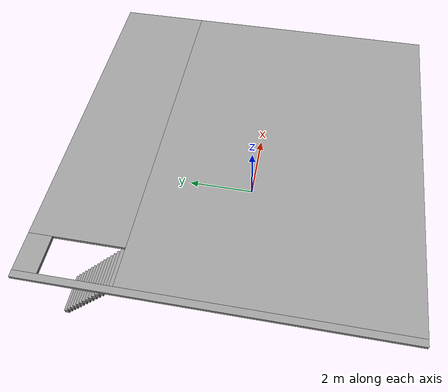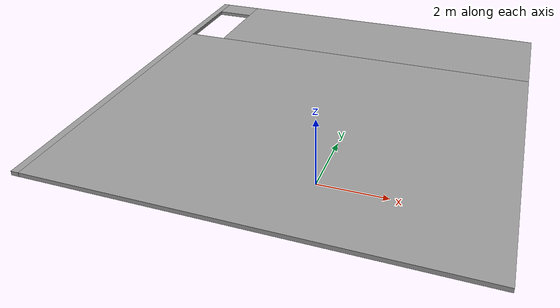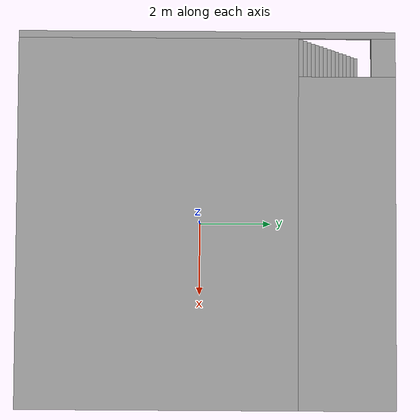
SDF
<sdf version="1.6">
 <model name="2storeyBuilding">
  <pose>-0.004073 0.180036 0 0 -0 0</pose>
  <link name="Floor_0">
   <pose>-0 -0 2.5 0 -0 0</pose>
   <visual name="Floor_0_Visual_0">
    <pose>-4.80983 0 0.05 0 -0 0</pose>
    <geometry><box><size>0.180349 9.8 0.1</size></box></geometry>
    <material>
     <script><uri>file://media/materials/scripts/gazebo.material</uri><name>Gazebo/Grey</name></script>
     <ambient>1 1 1 1</ambient>
    </material>
    <meta><layer>1</layer></meta>
   </visual>
   <collision name="Floor_0_Collision_0">
    <geometry><box><size>0.180349 9.8 0.1</size></box></geometry>
    <pose>-4.80983 0 0.05 0 -0 0</pose>
   </collision>
   <visual name="Floor_0_Visual_1">
    <pose>0.090174 -1.26072 0.05 0 -0 0</pose>
    <geometry><box><size>9.61965 7.27856 0.1</size></box></geometry>
    <material>
     <script><uri>file://media/materials/scripts/gazebo.material</uri><name>Gazebo/Grey</name></script>
     <ambient>1 1 1 1</ambient>
    </material>
    <meta><layer>1</layer></meta>
   </visual>
   <collision name="Floor_0_Collision_1">
    <geometry><box><size>9.61965 7.27856 0.1</size></box></geometry>
    <pose>0.090174 -1.26072 0.05 0 -0 0</pose>
   </collision>
   <visual name="Floor_0_Visual_2">
    <pose>0.590174 3.63928 0.05 0 -0 0</pose>
    <geometry><box><size>8.61965 2.52144 0.1</size></box></geometry>
    <material>
     <script><uri>file://media/materials/scripts/gazebo.material</uri><name>Gazebo/Grey</name></script>
     <ambient>1 1 1 1</ambient>
    </material>
    <meta><layer>1</layer></meta>
   </visual>
   <collision name="Floor_0_Collision_2">
    <geometry><box><size>8.61965 2.52144 0.1</size></box></geometry>
    <pose>0.590174 3.63928 0.05 0 -0 0</pose>
   </collision>
   <visual name="Floor_0_Visual_3">
    <pose>-4.21965 4.58311 0.05 0 -0 0</pose>
    <geometry><box><size>1 0.633786 0.1</size></box></geometry>
    <material>
     <script><uri>file://media/materials/scripts/gazebo.material</uri><name>Gazebo/Grey</name></script>
     <ambient>1 1 1 1</ambient>
    </material>
    <meta><layer>1</layer></meta>
   </visual>
   <collision name="Floor_0_Collision_3">
    <geometry><box><size>1 0.633786 0.1</size></box></geometry>
    <pose>-4.21965 4.58311 0.05 0 -0 0</pose>
   </collision>
  </link>
  <link name="Stairs_1">
   <visual name="Stairs_1_Visual_0">
    <pose>-4.21965 4.20329 0.083333 0 -0 0</pose>
    <geometry><box><size>1 0.125844 0.166667</size></box></geometry>
    <material>
     <script><uri>file://media/materials/scripts/gazebo.material</uri><name>Gazebo/Grey</name></script>
     <ambient>1 1 1 1</ambient>
    </material>
    <meta><layer>0</layer></meta>
   </visual>
   <collision name="Stairs_1_Collision_0">
    <geometry><box><size>1 0.125844 0.166667</size></box></geometry>
    <pose>-4.21965 4.20329 0.083333 0 -0 0</pose>
   </collision>
   <visual name="Stairs_1_Visual_1">
    <pose>-4.21965 4.07745 0.25 0 -0 0</pose>
    <geometry><box><size>1 0.125844 0.166667</size></box></geometry>
    <material>
     <script><uri>file://media/materials/scripts/gazebo.material</uri><name>Gazebo/Grey</name></script>
     <ambient>1 1 1 1</ambient>
    </material>
    <meta><layer>0</layer></meta>
   </visual>
   <collision name="Stairs_1_Collision_1">
    <geometry><box><size>1 0.125844 0.166667</size></box></geometry>
    <pose>-4.21965 4.07745 0.25 0 -0 0</pose>
   </collision>
   <visual name="Stairs_1_Visual_2">
    <pose>-4.21965 3.9516 0.416667 0 -0 0</pose>
    <geometry><box><size>1 0.125844 0.166667</size></box></geometry>
    <material>
     <script><uri>file://media/materials/scripts/gazebo.material</uri><name>Gazebo/Grey</name></script>
     <ambient>1 1 1 1</ambient>
    </material>
    <meta><layer>0</layer></meta>
   </visual>
   <collision name="Stairs_1_Collision_2">
    <geometry><box><size>1 0.125844 0.166667</size></box></geometry>
    <pose>-4.21965 3.9516 0.416667 0 -0 0</pose>
   </collision>
   <visual name="Stairs_1_Visual_3">
    <pose>-4.21965 3.82576 0.583333 0 -0 0</pose>
    <geometry><box><size>1 0.125844 0.166667</size></box></geometry>
    <material>
     <script><uri>file://media/materials/scripts/gazebo.material</uri><name>Gazebo/Grey</name></script>
     <ambient>1 1 1 1</ambient>
    </material>
    <meta><layer>0</layer></meta>
   </visual>
   <collision name="Stairs_1_Collision_3">
    <geometry><box><size>1 0.125844 0.166667</size></box></geometry>
    <pose>-4.21965 3.82576 0.583333 0 -0 0</pose>
   </collision>
   <visual name="Stairs_1_Visual_4">
    <pose>-4.21965 3.69992 0.75 0 -0 0</pose>
    <geometry><box><size>1 0.125844 0.166667</size></box></geometry>
    <material>
     <script><uri>file://media/materials/scripts/gazebo.material</uri><name>Gazebo/Grey</name></script>
     <ambient>1 1 1 1</ambient>
    </material>
    <meta><layer>0</layer></meta>
   </visual>
   <collision name="Stairs_1_Collision_4">
    <geometry><box><size>1 0.125844 0.166667</size></box></geometry>
    <pose>-4.21965 3.69992 0.75 0 -0 0</pose>
   </collision>
   <visual name="Stairs_1_Visual_5">
    <pose>-4.21965 3.57407 0.916667 0 -0 0</pose>
    <geometry><box><size>1 0.125844 0.166667</size></box></geometry>
    <material>
     <script><uri>file://media/materials/scripts/gazebo.material</uri><name>Gazebo/Grey</name></script>
     <ambient>1 1 1 1</ambient>
    </material>
    <meta><layer>0</layer></meta>
   </visual>
   <collision name="Stairs_1_Collision_5">
    <geometry><box><size>1 0.125844 0.166667</size></box></geometry>
    <pose>-4.21965 3.57407 0.916667 0 -0 0</pose>
   </collision>
   <visual name="Stairs_1_Visual_6">
    <pose>-4.21965 3.44823 1.08333 0 -0 0</pose>
    <geometry><box><size>1 0.125844 0.166667</size></box></geometry>
    <material>
     <script><uri>file://media/materials/scripts/gazebo.material</uri><name>Gazebo/Grey</name></script>
     <ambient>1 1 1 1</ambient>
    </material>
    <meta><layer>0</layer></meta>
   </visual>
   <collision name="Stairs_1_Collision_6">
    <geometry><box><size>1 0.125844 0.166667</size></box></geometry>
    <pose>-4.21965 3.44823 1.08333 0 -0 0</pose>
   </collision>
   <visual name="Stairs_1_Visual_7">
    <pose>-4.21965 3.32239 1.25 0 -0 0</pose>
    <geometry><box><size>1 0.125844 0.166667</size></box></geometry>
    <material>
     <script><uri>file://media/materials/scripts/gazebo.material</uri><name>Gazebo/Grey</name></script>
     <ambient>1 1 1 1</ambient>
    </material>
    <meta><layer>0</layer></meta>
   </visual>
   <collision name="Stairs_1_Collision_7">
    <geometry><box><size>1 0.125844 0.166667</size></box></geometry>
    <pose>-4.21965 3.32239 1.25 0 -0 0</pose>
   </collision>
   <visual name="Stairs_1_Visual_8">
    <pose>-4.21965 3.19654 1.41667 0 -0 0</pose>
    <geometry><box><size>1 0.125844 0.166667</size></box></geometry>
    <material>
     <script><uri>file://media/materials/scripts/gazebo.material</uri><name>Gazebo/Grey</name></script>
     <ambient>1 1 1 1</ambient>
    </material>
    <meta><layer>0</layer></meta>
   </visual>
   <collision name="Stairs_1_Collision_8">
    <geometry><box><size>1 0.125844 0.166667</size></box></geometry>
    <pose>-4.21965 3.19654 1.41667 0 -0 0</pose>
   </collision>
   <visual name="Stairs_1_Visual_9">
    <pose>-4.21965 3.0707 1.58333 0 -0 0</pose>
    <geometry><box><size>1 0.125844 0.166667</size></box></geometry>
    <material>
     <script><uri>file://media/materials/scripts/gazebo.material</uri><name>Gazebo/Grey</name></script>
     <ambient>1 1 1 1</ambient>
    </material>
    <meta><layer>0</layer></meta>
   </visual>
   <collision name="Stairs_1_Collision_9">
    <geometry><box><size>1 0.125844 0.166667</size></box></geometry>
    <pose>-4.21965 3.0707 1.58333 0 -0 0</pose>
   </collision>
   <visual name="Stairs_1_Visual_10">
    <pose>-4.21965 2.94485 1.75 0 -0 0</pose>
    <geometry><box><size>1 0.125844 0.166667</size></box></geometry>
    <material>
     <script><uri>file://media/materials/scripts/gazebo.material</uri><name>Gazebo/Grey</name></script>
     <ambient>1 1 1 1</ambient>
    </material>
    <meta><layer>0</layer></meta>
   </visual>
   <collision name="Stairs_1_Collision_10">
    <geometry><box><size>1 0.125844 0.166667</size></box></geometry>
    <pose>-4.21965 2.94485 1.75 0 -0 0</pose>
   </collision>
   <visual name="Stairs_1_Visual_11">
    <pose>-4.21965 2.81901 1.91667 0 -0 0</pose>
    <geometry><box><size>1 0.125844 0.166667</size></box></geometry>
    <material>
     <script><uri>file://media/materials/scripts/gazebo.material</uri><name>Gazebo/Grey</name></script>
     <ambient>1 1 1 1</ambient>
    </material>
    <meta><layer>0</layer></meta>
   </visual>
   <collision name="Stairs_1_Collision_11">
    <geometry><box><size>1 0.125844 0.166667</size></box></geometry>
    <pose>-4.21965 2.81901 1.91667 0 -0 0</pose>
   </collision>
   <visual name="Stairs_1_Visual_12">
    <pose>-4.21965 2.69317 2.08333 0 -0 0</pose>
    <geometry><box><size>1 0.125844 0.166667</size></box></geometry>
    <material>
     <script><uri>file://media/materials/scripts/gazebo.material</uri><name>Gazebo/Grey</name></script>
     <ambient>1 1 1 1</ambient>
    </material>
    <meta><layer>0</layer></meta>
   </visual>
   <collision name="Stairs_1_Collision_12">
    <geometry><box><size>1 0.125844 0.166667</size></box></geometry>
    <pose>-4.21965 2.69317 2.08333 0 -0 0</pose>
   </collision>
   <visual name="Stairs_1_Visual_13">
    <pose>-4.21965 2.56732 2.25 0 -0 0</pose>
    <geometry><box><size>1 0.125844 0.166667</size></box></geometry>
    <material>
     <script><uri>file://media/materials/scripts/gazebo.material</uri><name>Gazebo/Grey</name></script>
     <ambient>1 1 1 1</ambient>
    </material>
    <meta><layer>0</layer></meta>
   </visual>
   <collision name="Stairs_1_Collision_13">
    <geometry><box><size>1 0.125844 0.166667</size></box></geometry>
    <pose>-4.21965 2.56732 2.25 0 -0 0</pose>
   </collision>
   <visual name="Stairs_1_Visual_14">
    <pose>-4.21965 2.44148 2.41667 0 -0 0</pose>
    <geometry><box><size>1 0.125844 0.166667</size></box></geometry>
    <material>
     <script><uri>file://media/materials/scripts/gazebo.material</uri><name>Gazebo/Grey</name></script>
     <ambient>1 1 1 1</ambient>
    </material>
    <meta><layer>0</layer></meta>
   </visual>
   <collision name="Stairs_1_Collision_14">
    <geometry><box><size>1 0.125844 0.166667</size></box></geometry>
    <pose>-4.21965 2.44148 2.41667 0 -0 0</pose>
   </collision>
  </link>
  <static>1</static>
 </model>
</sdf>
